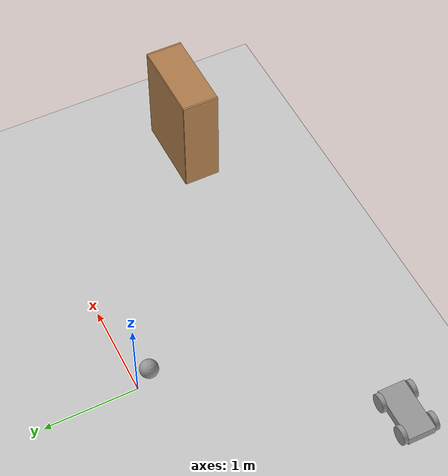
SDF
<sdf version="1.6">
 <world name="default">
  <model name="ground_plane">
   <static>1</static>
   <link name="link">
    <collision name="collision">
     <geometry><plane><normal>0 0 1</normal><size>100 100</size></plane></geometry>
     <surface><friction><ode><mu>100</mu><mu2>50</mu2></ode></friction></surface>
    </collision>
    <visual name="visual">
     <cast_shadows>0</cast_shadows>
     <geometry><plane><normal>0 0 1</normal><size>100 100</size></plane></geometry>
     <material>
      <script><uri>file://media/materials/scripts/gazebo.material</uri><name>Gazebo/Grey</name></script>
     </material>
    </visual>
   </link>
  </model>
  <model name="AutoCart_clone">
   <link name="link_0">
    <inertial>
     <mass>1</mass>
     <inertia>
      <ixx>0.166667</ixx>
      <ixy>0</ixy>
      <ixz>0</ixz>
      <iyy>0.166667</iyy>
      <iyz>0</iyz>
      <izz>0.166667</izz>
     </inertia>
    </inertial>
    <visual name="visual">
     <geometry><box><size>0.6 0.3 0.1</size></box></geometry>
     <material>
      <lighting>1</lighting>
      <script><uri>file://media/materials/scripts/gazebo.material</uri><name>Gazebo/Grey</name></script>
      <shader type="pixel"><normal_map>__default__</normal_map></shader>
      <ambient>0.3 0.3 0.3 1</ambient>
      <diffuse>0.7 0.7 0.7 1</diffuse>
      <specular>0.01 0.01 0.01 1</specular>
      <emissive>0 0 0 1</emissive>
     </material>
    </visual>
    <collision name="collision">
     <geometry><box><size>0.6 0.3 0.1</size></box></geometry>
     <surface>
      <friction>
       <ode><mu>1</mu><mu2>1</mu2><fdir1>0 0 0</fdir1><slip1>0</slip1><slip2>0</slip2></ode>
       <torsional>
        <coefficient>1</coefficient>
        <patch_radius>0</patch_radius>
        <surface_radius>0</surface_radius>
        <use_patch_radius>1</use_patch_radius>
        <ode><slip>0</slip></ode>
       </torsional>
      </friction>
      <bounce><restitution_coefficient>0</restitution_coefficient><threshold>1e+06</threshold></bounce>
      <contact>
       <collide_without_contact>0</collide_without_contact>
       <collide_without_contact_bitmask>1</collide_without_contact_bitmask>
       <collide_bitmask>1</collide_bitmask>
       <ode>
        <soft_cfm>0</soft_cfm>
        <soft_erp>0.2</soft_erp>
        <kp>1e+13</kp>
        <kd>1</kd>
        <max_vel>0.01</max_vel>
        <min_depth>0</min_depth>
       </ode>
       <bullet>
        <split_impulse>1</split_impulse>
        <split_impulse_penetration_threshold>-0.01</split_impulse_penetration_threshold>
        <soft_cfm>0</soft_cfm>
        <soft_erp>0.2</soft_erp>
        <kp>1e+13</kp>
        <kd>1</kd>
       </bullet>
      </contact>
     </surface>
    </collision>
   </link>
   <link name="link_1_clone">
    <pose>-0.2 0.17501 0 1.5707 -0 0</pose>
    <inertial>
     <mass>1</mass>
     <inertia><ixx>0.145833</ixx><ixy>0</ixy><ixz>0</ixz><iyy>0.145833</iyy><iyz>0</iyz><izz>0.125</izz></inertia>
    </inertial>
    <visual name="visual">
     <geometry><cylinder><radius>0.1</radius><length>0.05</length></cylinder></geometry>
     <material>
      <lighting>1</lighting>
      <script><uri>file://media/materials/scripts/gazebo.material</uri><name>Gazebo/Grey</name></script>
      <shader type="pixel"><normal_map>__default__</normal_map></shader>
      <ambient>0.3 0.3 0.3 1</ambient>
      <diffuse>0.7 0.7 0.7 1</diffuse>
      <specular>0.01 0.01 0.01 1</specular>
      <emissive>0 0 0 1</emissive>
     </material>
    </visual>
    <collision name="collision">
     <geometry><cylinder><radius>0.1</radius><length>0.05</length></cylinder></geometry>
     <surface>
      <friction>
       <ode><mu>1</mu><mu2>1</mu2><fdir1>0 0 0</fdir1><slip1>0</slip1><slip2>0</slip2></ode>
       <torsional>
        <coefficient>1</coefficient>
        <patch_radius>0</patch_radius>
        <surface_radius>0</surface_radius>
        <use_patch_radius>1</use_patch_radius>
        <ode><slip>0</slip></ode>
       </torsional>
      </friction>
      <bounce><restitution_coefficient>0</restitution_coefficient><threshold>1e+06</threshold></bounce>
      <contact>
       <collide_without_contact>0</collide_without_contact>
       <collide_without_contact_bitmask>1</collide_without_contact_bitmask>
       <collide_bitmask>1</collide_bitmask>
       <ode>
        <soft_cfm>0</soft_cfm>
        <soft_erp>0.2</soft_erp>
        <kp>1e+13</kp>
        <kd>1</kd>
        <max_vel>0.01</max_vel>
        <min_depth>0</min_depth>
       </ode>
       <bullet>
        <split_impulse>1</split_impulse>
        <split_impulse_penetration_threshold>-0.01</split_impulse_penetration_threshold>
        <soft_cfm>0</soft_cfm>
        <soft_erp>0.2</soft_erp>
        <kp>1e+13</kp>
        <kd>1</kd>
       </bullet>
      </contact>
     </surface>
    </collision>
   </link>
   <link name="link_1_clone_clone">
    <pose>0.2 0.17501 0 1.5707 -0 0</pose>
    <inertial>
     <mass>1</mass>
     <inertia><ixx>0.145833</ixx><ixy>0</ixy><ixz>0</ixz><iyy>0.145833</iyy><iyz>0</iyz><izz>0.125</izz></inertia>
    </inertial>
    <visual name="visual">
     <geometry><cylinder><radius>0.1</radius><length>0.05</length></cylinder></geometry>
     <material>
      <lighting>1</lighting>
      <script><uri>file://media/materials/scripts/gazebo.material</uri><name>Gazebo/Grey</name></script>
      <shader type="pixel"><normal_map>__default__</normal_map></shader>
      <ambient>0.3 0.3 0.3 1</ambient>
      <diffuse>0.7 0.7 0.7 1</diffuse>
      <specular>0.01 0.01 0.01 1</specular>
      <emissive>0 0 0 1</emissive>
     </material>
    </visual>
    <collision name="collision">
     <geometry><cylinder><radius>0.1</radius><length>0.05</length></cylinder></geometry>
     <surface>
      <friction>
       <ode><mu>1</mu><mu2>1</mu2><fdir1>0 0 0</fdir1><slip1>0</slip1><slip2>0</slip2></ode>
       <torsional>
        <coefficient>1</coefficient>
        <patch_radius>0</patch_radius>
        <surface_radius>0</surface_radius>
        <use_patch_radius>1</use_patch_radius>
        <ode><slip>0</slip></ode>
       </torsional>
      </friction>
      <bounce><restitution_coefficient>0</restitution_coefficient><threshold>1e+06</threshold></bounce>
      <contact>
       <collide_without_contact>0</collide_without_contact>
       <collide_without_contact_bitmask>1</collide_without_contact_bitmask>
       <collide_bitmask>1</collide_bitmask>
       <ode>
        <soft_cfm>0</soft_cfm>
        <soft_erp>0.2</soft_erp>
        <kp>1e+13</kp>
        <kd>1</kd>
        <max_vel>0.01</max_vel>
        <min_depth>0</min_depth>
       </ode>
       <bullet>
        <split_impulse>1</split_impulse>
        <split_impulse_penetration_threshold>-0.01</split_impulse_penetration_threshold>
        <soft_cfm>0</soft_cfm>
        <soft_erp>0.2</soft_erp>
        <kp>1e+13</kp>
        <kd>1</kd>
       </bullet>
      </contact>
     </surface>
    </collision>
   </link>
   <link name="link_1_clone_clone_0">
    <pose>-0.2 -0.17501 0 1.5707 -0 0</pose>
    <inertial>
     <mass>1</mass>
     <inertia><ixx>0.145833</ixx><ixy>0</ixy><ixz>0</ixz><iyy>0.145833</iyy><iyz>0</iyz><izz>0.125</izz></inertia>
    </inertial>
    <visual name="visual">
     <geometry><cylinder><radius>0.1</radius><length>0.05</length></cylinder></geometry>
     <material>
      <lighting>1</lighting>
      <script><uri>file://media/materials/scripts/gazebo.material</uri><name>Gazebo/Grey</name></script>
      <shader type="pixel"><normal_map>__default__</normal_map></shader>
      <ambient>0.3 0.3 0.3 1</ambient>
      <diffuse>0.7 0.7 0.7 1</diffuse>
      <specular>0.01 0.01 0.01 1</specular>
      <emissive>0 0 0 1</emissive>
     </material>
    </visual>
    <collision name="collision">
     <geometry><cylinder><radius>0.1</radius><length>0.05</length></cylinder></geometry>
     <surface>
      <friction>
       <ode><mu>1</mu><mu2>1</mu2><fdir1>0 0 0</fdir1><slip1>0</slip1><slip2>0</slip2></ode>
       <torsional>
        <coefficient>1</coefficient>
        <patch_radius>0</patch_radius>
        <surface_radius>0</surface_radius>
        <use_patch_radius>1</use_patch_radius>
        <ode><slip>0</slip></ode>
       </torsional>
      </friction>
      <bounce><restitution_coefficient>0</restitution_coefficient><threshold>1e+06</threshold></bounce>
      <contact>
       <collide_without_contact>0</collide_without_contact>
       <collide_without_contact_bitmask>1</collide_without_contact_bitmask>
       <collide_bitmask>1</collide_bitmask>
       <ode>
        <soft_cfm>0</soft_cfm>
        <soft_erp>0.2</soft_erp>
        <kp>1e+13</kp>
        <kd>1</kd>
        <max_vel>0.01</max_vel>
        <min_depth>0</min_depth>
       </ode>
       <bullet>
        <split_impulse>1</split_impulse>
        <split_impulse_penetration_threshold>-0.01</split_impulse_penetration_threshold>
        <soft_cfm>0</soft_cfm>
        <soft_erp>0.2</soft_erp>
        <kp>1e+13</kp>
        <kd>1</kd>
       </bullet>
      </contact>
     </surface>
    </collision>
   </link>
   <link name="link_1_clone_clone_1">
    <pose>0.2 -0.17501 0 1.5707 -0 0</pose>
    <inertial>
     <mass>1</mass>
     <inertia><ixx>0.145833</ixx><ixy>0</ixy><ixz>0</ixz><iyy>0.145833</iyy><iyz>0</iyz><izz>0.125</izz></inertia>
    </inertial>
    <visual name="visual">
     <geometry><cylinder><radius>0.1</radius><length>0.05</length></cylinder></geometry>
     <material>
      <lighting>1</lighting>
      <script><uri>file://media/materials/scripts/gazebo.material</uri><name>Gazebo/Grey</name></script>
      <shader type="pixel"><normal_map>__default__</normal_map></shader>
      <ambient>0.3 0.3 0.3 1</ambient>
      <diffuse>0.7 0.7 0.7 1</diffuse>
      <specular>0.01 0.01 0.01 1</specular>
      <emissive>0 0 0 1</emissive>
     </material>
    </visual>
    <collision name="collision">
     <geometry><cylinder><radius>0.1</radius><length>0.05</length></cylinder></geometry>
     <surface>
      <friction>
       <ode><mu>1</mu><mu2>1</mu2><fdir1>0 0 0</fdir1><slip1>0</slip1><slip2>0</slip2></ode>
       <torsional>
        <coefficient>1</coefficient>
        <patch_radius>0</patch_radius>
        <surface_radius>0</surface_radius>
        <use_patch_radius>1</use_patch_radius>
        <ode><slip>0</slip></ode>
       </torsional>
      </friction>
      <bounce><restitution_coefficient>0</restitution_coefficient><threshold>1e+06</threshold></bounce>
      <contact>
       <collide_without_contact>0</collide_without_contact>
       <collide_without_contact_bitmask>1</collide_without_contact_bitmask>
       <collide_bitmask>1</collide_bitmask>
       <ode>
        <soft_cfm>0</soft_cfm>
        <soft_erp>0.2</soft_erp>
        <kp>1e+13</kp>
        <kd>1</kd>
        <max_vel>0.01</max_vel>
        <min_depth>0</min_depth>
       </ode>
       <bullet>
        <split_impulse>1</split_impulse>
        <split_impulse_penetration_threshold>-0.01</split_impulse_penetration_threshold>
        <soft_cfm>0</soft_cfm>
        <soft_erp>0.2</soft_erp>
        <kp>1e+13</kp>
        <kd>1</kd>
       </bullet>
      </contact>
     </surface>
    </collision>
   </link>
   <joint name="link_0_JOINT_3" type="revolute">
    <parent>link_0</parent>
    <child>link_1_clone_clone_1</child>
    <axis>
     <xyz>0 0 1</xyz>
     <use_parent_model_frame>0</use_parent_model_frame>
     <limit>
      <lower>-1.79769e+308</lower>
      <upper>1.79769e+308</upper>
      <effort>-1</effort>
      <velocity>-1</velocity>
     </limit>
     <dynamics>
      <spring_reference>0</spring_reference>
      <spring_stiffness>0</spring_stiffness>
      <damping>0</damping>
     </dynamics>
    </axis>
    <physics>
     <ode><limit><cfm>0</cfm><erp>0.2</erp></limit><suspension><cfm>0</cfm><erp>0.2</erp></suspension></ode>
    </physics>
   </joint>
   <joint name="link_0_JOINT_4" type="revolute">
    <parent>link_0</parent>
    <child>link_1_clone_clone_0</child>
    <axis>
     <xyz>0 0 1</xyz>
     <use_parent_model_frame>0</use_parent_model_frame>
     <limit>
      <lower>-1.79769e+308</lower>
      <upper>1.79769e+308</upper>
      <effort>-1</effort>
      <velocity>-1</velocity>
     </limit>
     <dynamics>
      <spring_reference>0</spring_reference>
      <spring_stiffness>0</spring_stiffness>
      <damping>0</damping>
     </dynamics>
    </axis>
    <physics>
     <ode><limit><cfm>0</cfm><erp>0.2</erp></limit><suspension><cfm>0</cfm><erp>0.2</erp></suspension></ode>
    </physics>
   </joint>
   <joint name="link_0_JOINT_5" type="revolute">
    <parent>link_0</parent>
    <child>link_1_clone</child>
    <axis>
     <xyz>0 0 1</xyz>
     <use_parent_model_frame>0</use_parent_model_frame>
     <limit>
      <lower>-1.79769e+308</lower>
      <upper>1.79769e+308</upper>
      <effort>-1</effort>
      <velocity>-1</velocity>
     </limit>
     <dynamics>
      <spring_reference>0</spring_reference>
      <spring_stiffness>0</spring_stiffness>
      <damping>0</damping>
     </dynamics>
    </axis>
    <physics>
     <ode><limit><cfm>0</cfm><erp>0.2</erp></limit><suspension><cfm>0</cfm><erp>0.2</erp></suspension></ode>
    </physics>
   </joint>
   <joint name="link_0_JOINT_6" type="revolute">
    <parent>link_0</parent>
    <child>link_1_clone_clone</child>
    <axis>
     <xyz>0 0 1</xyz>
     <use_parent_model_frame>0</use_parent_model_frame>
     <limit>
      <lower>-1.79769e+308</lower>
      <upper>1.79769e+308</upper>
      <effort>-1</effort>
      <velocity>-1</velocity>
     </limit>
     <dynamics>
      <spring_reference>0</spring_reference>
      <spring_stiffness>0</spring_stiffness>
      <damping>0</damping>
     </dynamics>
    </axis>
    <physics>
     <ode><limit><cfm>0</cfm><erp>0.2</erp></limit><suspension><cfm>0</cfm><erp>0.2</erp></suspension></ode>
    </physics>
   </joint>
   <static>0</static>
   <pose>-1.46488 -2.20215 0.100002 1e-06 -0 -0.003631</pose>
  </model>
  <model name="bookshelf">
   <static>1</static>
   <link name="link">
    <inertial><mass>1</mass></inertial>
    <collision name="back">
     <pose>0 0.005 0.6 0 -0 0</pose>
     <geometry><box><size>0.9 0.01 1.2</size></box></geometry>
    </collision>
    <visual name="visual1">
     <pose>0 0.005 0.6 0 -0 0</pose>
     <geometry><box><size>0.9 0.01 1.2</size></box></geometry>
     <material>
      <script><uri>file://media/materials/scripts/gazebo.material</uri><name>Gazebo/Wood</name></script>
     </material>
    </visual>
    <collision name="left_side">
     <pose>0.45 -0.195 0.6 0 -0 0</pose>
     <geometry><box><size>0.02 0.4 1.2</size></box></geometry>
    </collision>
    <visual name="visual2">
     <pose>0.45 -0.195 0.6 0 -0 0</pose>
     <geometry><box><size>0.02 0.4 1.2</size></box></geometry>
     <material>
      <script><uri>file://media/materials/scripts/gazebo.material</uri><name>Gazebo/Wood</name></script>
     </material>
    </visual>
    <collision name="right_side">
     <pose>-0.45 -0.195 0.6 0 -0 0</pose>
     <geometry><box><size>0.02 0.4 1.2</size></box></geometry>
    </collision>
    <visual name="visual3">
     <pose>-0.45 -0.195 0.6 0 -0 0</pose>
     <geometry><box><size>0.02 0.4 1.2</size></box></geometry>
     <material>
      <script><uri>file://media/materials/scripts/gazebo.material</uri><name>Gazebo/Wood</name></script>
     </material>
    </visual>
    <collision name="bottom">
     <pose>0 -0.195 0.03 0 -0 0</pose>
     <geometry><box><size>0.88 0.4 0.06</size></box></geometry>
    </collision>
    <visual name="visual4">
     <pose>0 -0.195 0.03 0 -0 0</pose>
     <geometry><box><size>0.88 0.4 0.06</size></box></geometry>
     <material>
      <script><uri>file://media/materials/scripts/gazebo.material</uri><name>Gazebo/Wood</name></script>
     </material>
    </visual>
    <collision name="top">
     <pose>0 -0.195 1.19 0 -0 0</pose>
     <geometry><box><size>0.88 0.4 0.02</size></box></geometry>
    </collision>
    <visual name="visual5">
     <pose>0 -0.195 1.19 0 -0 0</pose>
     <geometry><box><size>0.88 0.4 0.02</size></box></geometry>
     <material>
      <script><uri>file://media/materials/scripts/gazebo.material</uri><name>Gazebo/Wood</name></script>
     </material>
    </visual>
    <collision name="low_shelf">
     <pose>0 -0.195 0.43 0 -0 0</pose>
     <geometry><box><size>0.88 0.4 0.02</size></box></geometry>
    </collision>
    <visual name="visual6">
     <pose>0 -0.195 0.43 0 -0 0</pose>
     <geometry><box><size>0.88 0.4 0.02</size></box></geometry>
     <material>
      <script><uri>file://media/materials/scripts/gazebo.material</uri><name>Gazebo/Wood</name></script>
     </material>
    </visual>
    <collision name="high_shelf">
     <pose>0 -0.195 0.8 0 -0 0</pose>
     <geometry><box><size>0.88 0.4 0.02</size></box></geometry>
    </collision>
    <visual name="visual7">
     <pose>0 -0.195 0.8 0 -0 0</pose>
     <geometry><box><size>0.88 0.4 0.02</size></box></geometry>
     <material>
      <script><uri>file://media/materials/scripts/gazebo.material</uri><name>Gazebo/Wood</name></script>
     </material>
    </visual>
   </link>
   <pose>2.62434 -1.57145 0 0 -0 0</pose>
  </model>
  <model name="my_ball">
   <link name="link_0">
    <inertial>
     <mass>1</mass>
     <inertia><ixx>0.1</ixx><ixy>0</ixy><ixz>0</ixz><iyy>0.1</iyy><iyz>0</iyz><izz>0.1</izz></inertia>
    </inertial>
    <visual name="visual">
     <geometry><sphere><radius>0.1</radius></sphere></geometry>
     <material>
      <lighting>1</lighting>
      <script><uri>file://media/materials/scripts/gazebo.material</uri><name>Gazebo/Grey</name></script>
      <shader type="pixel"><normal_map>__default__</normal_map></shader>
      <ambient>1 1 1 1</ambient>
      <diffuse>1 1 1 1</diffuse>
      <specular>1 1 1 1</specular>
      <emissive>1 1 1 1</emissive>
     </material>
    </visual>
    <collision name="collision">
     <geometry><sphere><radius>0.1</radius></sphere></geometry>
     <surface>
      <friction>
       <ode><mu>1</mu><mu2>1</mu2><fdir1>0 0 0</fdir1><slip1>0</slip1><slip2>0</slip2></ode>
       <torsional>
        <coefficient>1</coefficient>
        <patch_radius>0</patch_radius>
        <surface_radius>0</surface_radius>
        <use_patch_radius>1</use_patch_radius>
        <ode><slip>0</slip></ode>
       </torsional>
      </friction>
      <bounce><restitution_coefficient>0</restitution_coefficient><threshold>1e+06</threshold></bounce>
      <contact>
       <collide_without_contact>0</collide_without_contact>
       <collide_without_contact_bitmask>1</collide_without_contact_bitmask>
       <collide_bitmask>1</collide_bitmask>
       <ode>
        <soft_cfm>0</soft_cfm>
        <soft_erp>0.2</soft_erp>
        <kp>1e+13</kp>
        <kd>1</kd>
        <max_vel>0.01</max_vel>
        <min_depth>0</min_depth>
       </ode>
       <bullet>
        <split_impulse>1</split_impulse>
        <split_impulse_penetration_threshold>-0.01</split_impulse_penetration_threshold>
        <soft_cfm>0</soft_cfm>
        <soft_erp>0.2</soft_erp>
        <kp>1e+13</kp>
        <kd>1</kd>
       </bullet>
      </contact>
     </surface>
    </collision>
   </link>
   <static>0</static>
   <pose>0.10714 -0.174021 0.1 0 -0 0</pose>
  </model>
 </world>
</sdf>
